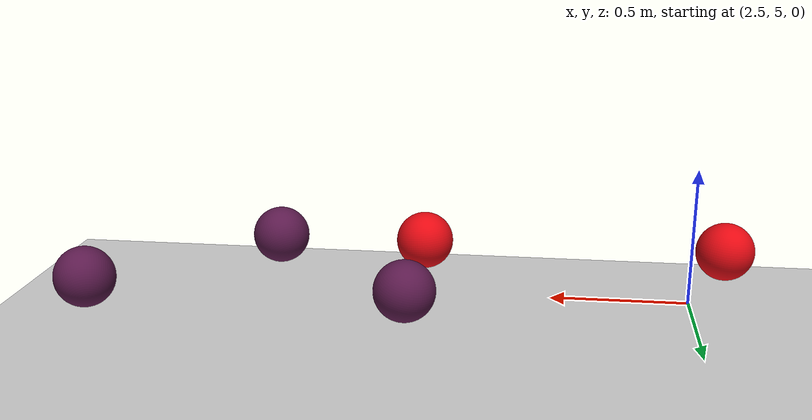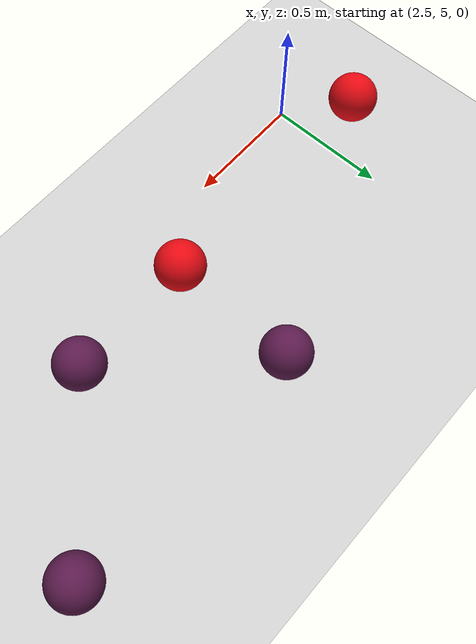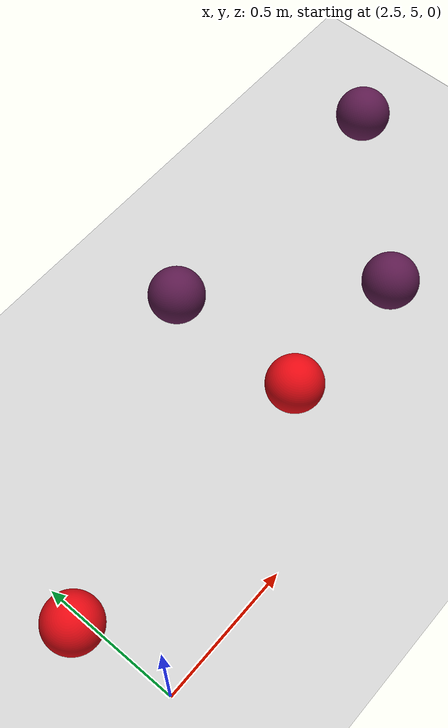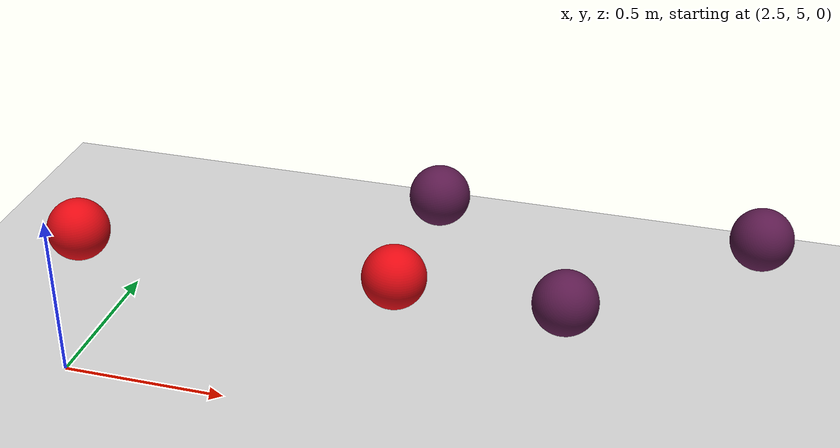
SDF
<sdf version="1.7">
 <world name="default">
  <model name="ground_plane">
   <static>1</static>
   <link name="link">
    <collision name="collision">
     <geometry><plane><normal>0 0 1</normal><size>100 100</size></plane></geometry>
     <surface>
      <contact><collide_bitmask>65535</collide_bitmask></contact>
      <friction><ode><mu>100</mu><mu2>50</mu2></ode></friction>
     </surface>
    </collision>
    <visual name="visual">
     <cast_shadows>0</cast_shadows>
     <geometry><plane><normal>0 0 1</normal><size>100 100</size></plane></geometry>
     <material>
      <script><uri>file://media/materials/scripts/gazebo.material</uri><name>Gazebo/Grey</name></script>
     </material>
    </visual>
   </link>
  </model>
  <model name="ball_empty_clone_0">
   <link name="link_1">
    <inertial>
     <mass>1</mass>
     <inertia>
      <ixx>0.166667</ixx>
      <ixy>0</ixy>
      <ixz>0</ixz>
      <iyy>0.166667</iyy>
      <iyz>0</iyz>
      <izz>0.166667</izz>
     </inertia>
    </inertial>
    <visual name="visual">
     <geometry>
      <mesh>
       <uri>/home/entity014/abu2024_ws/src/abu_description/worlds/ball_empty.dae</uri>
       <scale>1 1 1</scale>
      </mesh>
     </geometry>
    </visual>
    <collision name="collision">
     <geometry>
      <mesh>
       <uri>/home/entity014/abu2024_ws/src/abu_description/worlds/ball_empty.dae</uri>
       <scale>1 1 1</scale>
      </mesh>
     </geometry>
     <surface>
      <friction>
       <ode><mu>1</mu><mu2>1</mu2><fdir1>0 0 0</fdir1><slip1>0</slip1><slip2>0</slip2></ode>
       <torsional>
        <coefficient>1</coefficient>
        <patch_radius>0</patch_radius>
        <surface_radius>0</surface_radius>
        <use_patch_radius>1</use_patch_radius>
        <ode><slip>0</slip></ode>
       </torsional>
      </friction>
      <bounce><restitution_coefficient>0</restitution_coefficient><threshold>1e+06</threshold></bounce>
      <contact>
       <collide_without_contact>0</collide_without_contact>
       <collide_without_contact_bitmask>1</collide_without_contact_bitmask>
       <collide_bitmask>1</collide_bitmask>
       <ode>
        <soft_cfm>0</soft_cfm>
        <soft_erp>0.2</soft_erp>
        <kp>1e+13</kp>
        <kd>1</kd>
        <max_vel>0.01</max_vel>
        <min_depth>0</min_depth>
       </ode>
       <bullet>
        <split_impulse>1</split_impulse>
        <split_impulse_penetration_threshold>-0.01</split_impulse_penetration_threshold>
        <soft_cfm>0</soft_cfm>
        <soft_erp>0.2</soft_erp>
        <kp>1e+13</kp>
        <kd>1</kd>
       </bullet>
      </contact>
     </surface>
    </collision>
   </link>
   <static>0</static>
   <pose>3.43449 5.7922 0.302583 -0.16654 -0.252537 0.165302</pose>
  </model>
  <model name="ball_empty_clone_1">
   <link name="link_1">
    <inertial>
     <mass>1</mass>
     <inertia>
      <ixx>0.166667</ixx>
      <ixy>0</ixy>
      <ixz>0</ixz>
      <iyy>0.166667</iyy>
      <iyz>0</iyz>
      <izz>0.166667</izz>
     </inertia>
    </inertial>
    <visual name="visual">
     <geometry>
      <mesh>
       <uri>/home/entity014/abu2024_ws/src/abu_description/worlds/ball_empty.dae</uri>
       <scale>1 1 1</scale>
      </mesh>
     </geometry>
    </visual>
    <collision name="collision">
     <geometry>
      <mesh>
       <uri>/home/entity014/abu2024_ws/src/abu_description/worlds/ball_empty.dae</uri>
       <scale>1 1 1</scale>
      </mesh>
     </geometry>
     <surface>
      <friction>
       <ode><mu>1</mu><mu2>1</mu2><fdir1>0 0 0</fdir1><slip1>0</slip1><slip2>0</slip2></ode>
       <torsional>
        <coefficient>1</coefficient>
        <patch_radius>0</patch_radius>
        <surface_radius>0</surface_radius>
        <use_patch_radius>1</use_patch_radius>
        <ode><slip>0</slip></ode>
       </torsional>
      </friction>
      <bounce><restitution_coefficient>0</restitution_coefficient><threshold>1e+06</threshold></bounce>
      <contact>
       <collide_without_contact>0</collide_without_contact>
       <collide_without_contact_bitmask>1</collide_without_contact_bitmask>
       <collide_bitmask>1</collide_bitmask>
       <ode>
        <soft_cfm>0</soft_cfm>
        <soft_erp>0.2</soft_erp>
        <kp>1e+13</kp>
        <kd>1</kd>
        <max_vel>0.01</max_vel>
        <min_depth>0</min_depth>
       </ode>
       <bullet>
        <split_impulse>1</split_impulse>
        <split_impulse_penetration_threshold>-0.01</split_impulse_penetration_threshold>
        <soft_cfm>0</soft_cfm>
        <soft_erp>0.2</soft_erp>
        <kp>1e+13</kp>
        <kd>1</kd>
       </bullet>
      </contact>
     </surface>
    </collision>
   </link>
   <static>0</static>
   <pose>3.93208 5.29338 0.302509 0.660181 0.421151 0.132481</pose>
  </model>
  <model name="ball_empty_clone_2">
   <link name="link_1">
    <inertial>
     <mass>1</mass>
     <inertia>
      <ixx>0.166667</ixx>
      <ixy>0</ixy>
      <ixz>0</ixz>
      <iyy>0.166667</iyy>
      <iyz>0</iyz>
      <izz>0.166667</izz>
     </inertia>
    </inertial>
    <visual name="visual">
     <geometry>
      <mesh>
       <uri>/home/entity014/abu2024_ws/src/abu_description/worlds/ball_empty.dae</uri>
       <scale>1 1 1</scale>
      </mesh>
     </geometry>
    </visual>
    <collision name="collision">
     <geometry>
      <mesh>
       <uri>/home/entity014/abu2024_ws/src/abu_description/worlds/ball_empty.dae</uri>
       <scale>1 1 1</scale>
      </mesh>
     </geometry>
     <surface>
      <friction>
       <ode><mu>1</mu><mu2>1</mu2><fdir1>0 0 0</fdir1><slip1>0</slip1><slip2>0</slip2></ode>
       <torsional>
        <coefficient>1</coefficient>
        <patch_radius>0</patch_radius>
        <surface_radius>0</surface_radius>
        <use_patch_radius>1</use_patch_radius>
        <ode><slip>0</slip></ode>
       </torsional>
      </friction>
      <bounce><restitution_coefficient>0</restitution_coefficient><threshold>1e+06</threshold></bounce>
      <contact>
       <collide_without_contact>0</collide_without_contact>
       <collide_without_contact_bitmask>1</collide_without_contact_bitmask>
       <collide_bitmask>1</collide_bitmask>
       <ode>
        <soft_cfm>0</soft_cfm>
        <soft_erp>0.2</soft_erp>
        <kp>1e+13</kp>
        <kd>1</kd>
        <max_vel>0.01</max_vel>
        <min_depth>0</min_depth>
       </ode>
       <bullet>
        <split_impulse>1</split_impulse>
        <split_impulse_penetration_threshold>-0.01</split_impulse_penetration_threshold>
        <soft_cfm>0</soft_cfm>
        <soft_erp>0.2</soft_erp>
        <kp>1e+13</kp>
        <kd>1</kd>
       </bullet>
      </contact>
     </surface>
    </collision>
   </link>
   <static>0</static>
   <pose>4.43389 5.7914 0.302505 0.911798 0.178377 0.307818</pose>
  </model>
  <model name="ball_red">
   <link name="link_1">
    <inertial>
     <mass>1</mass>
     <inertia>
      <ixx>0.166667</ixx>
      <ixy>0</ixy>
      <ixz>0</ixz>
      <iyy>0.166667</iyy>
      <iyz>0</iyz>
      <izz>0.166667</izz>
     </inertia>
    </inertial>
    <visual name="visual">
     <geometry>
      <mesh><uri>/home/entity014/abu2024_ws/src/abu_description/worlds/ball_red.dae</uri><scale>1 1 1</scale></mesh>
     </geometry>
    </visual>
    <collision name="collision">
     <geometry>
      <mesh><uri>/home/entity014/abu2024_ws/src/abu_description/worlds/ball_red.dae</uri><scale>1 1 1</scale></mesh>
     </geometry>
     <surface>
      <friction>
       <ode><mu>1</mu><mu2>1</mu2><fdir1>0 0 0</fdir1><slip1>0</slip1><slip2>0</slip2></ode>
       <torsional>
        <coefficient>1</coefficient>
        <patch_radius>0</patch_radius>
        <surface_radius>0</surface_radius>
        <use_patch_radius>1</use_patch_radius>
        <ode><slip>0</slip></ode>
       </torsional>
      </friction>
      <bounce><restitution_coefficient>0</restitution_coefficient><threshold>1e+06</threshold></bounce>
      <contact>
       <collide_without_contact>0</collide_without_contact>
       <collide_without_contact_bitmask>1</collide_without_contact_bitmask>
       <collide_bitmask>1</collide_bitmask>
       <ode>
        <soft_cfm>0</soft_cfm>
        <soft_erp>0.2</soft_erp>
        <kp>1e+13</kp>
        <kd>1</kd>
        <max_vel>0.01</max_vel>
        <min_depth>0</min_depth>
       </ode>
       <bullet>
        <split_impulse>1</split_impulse>
        <split_impulse_penetration_threshold>-0.01</split_impulse_penetration_threshold>
        <soft_cfm>0</soft_cfm>
        <soft_erp>0.2</soft_erp>
        <kp>1e+13</kp>
        <kd>1</kd>
       </bullet>
      </contact>
     </surface>
    </collision>
   </link>
   <static>0</static>
   <pose>2.43399 5.29357 0.302553 -0.014667 -0.125477 0.657178</pose>
  </model>
  <model name="ball_red_0">
   <link name="link_1">
    <inertial>
     <mass>1</mass>
     <inertia>
      <ixx>0.166667</ixx>
      <ixy>0</ixy>
      <ixz>0</ixz>
      <iyy>0.166667</iyy>
      <iyz>0</iyz>
      <izz>0.166667</izz>
     </inertia>
    </inertial>
    <visual name="visual">
     <geometry>
      <mesh><uri>/home/entity014/abu2024_ws/src/abu_description/worlds/ball_red.dae</uri><scale>1 1 1</scale></mesh>
     </geometry>
    </visual>
    <collision name="collision">
     <geometry>
      <mesh><uri>/home/entity014/abu2024_ws/src/abu_description/worlds/ball_red.dae</uri><scale>1 1 1</scale></mesh>
     </geometry>
     <surface>
      <friction>
       <ode><mu>1</mu><mu2>1</mu2><fdir1>0 0 0</fdir1><slip1>0</slip1><slip2>0</slip2></ode>
       <torsional>
        <coefficient>1</coefficient>
        <patch_radius>0</patch_radius>
        <surface_radius>0</surface_radius>
        <use_patch_radius>1</use_patch_radius>
        <ode><slip>0</slip></ode>
       </torsional>
      </friction>
      <bounce><restitution_coefficient>0</restitution_coefficient><threshold>1e+06</threshold></bounce>
      <contact>
       <collide_without_contact>0</collide_without_contact>
       <collide_without_contact_bitmask>1</collide_without_contact_bitmask>
       <collide_bitmask>1</collide_bitmask>
       <ode>
        <soft_cfm>0</soft_cfm>
        <soft_erp>0.2</soft_erp>
        <kp>1e+13</kp>
        <kd>1</kd>
        <max_vel>0.01</max_vel>
        <min_depth>0</min_depth>
       </ode>
       <bullet>
        <split_impulse>1</split_impulse>
        <split_impulse_penetration_threshold>-0.01</split_impulse_penetration_threshold>
        <soft_cfm>0</soft_cfm>
        <soft_erp>0.2</soft_erp>
        <kp>1e+13</kp>
        <kd>1</kd>
       </bullet>
      </contact>
     </surface>
    </collision>
   </link>
   <static>0</static>
   <pose>3.4319 5.29352 0.302576 0.065241 0.113249 -0.014275</pose>
  </model>
 </world>
</sdf>
